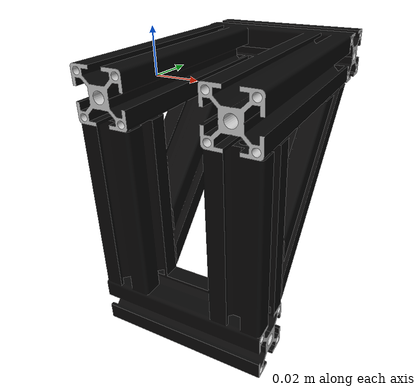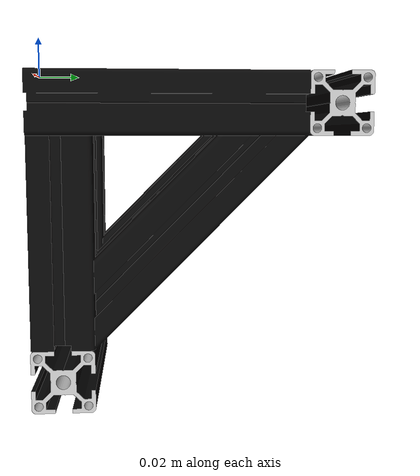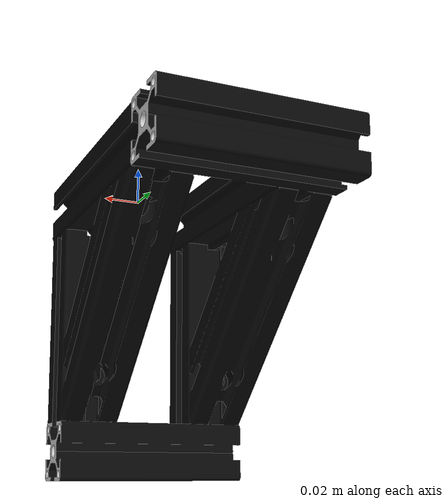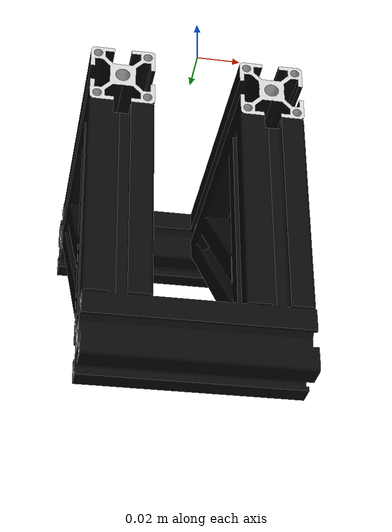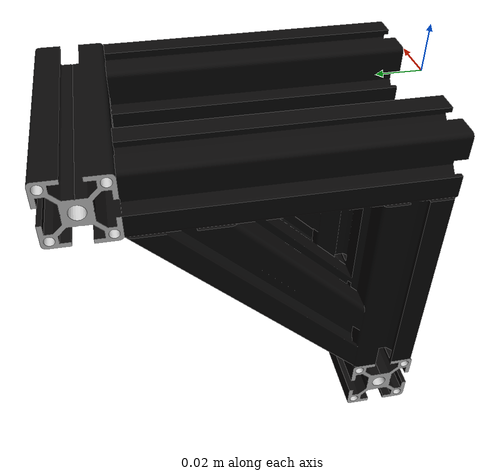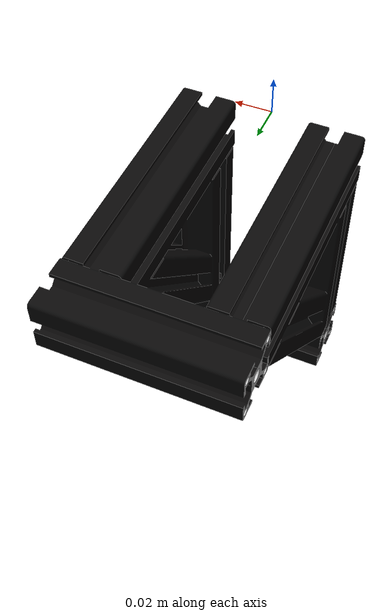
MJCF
<mujoco model="pelvis_0">
  <default>
    <default class="visual">
      <geom group="2" type="mesh" contype="0" conaffinity="0"/>
    </default>
    <default class="collision">
      <geom group="3" type="mesh"/>
    </default>
  </default>
  <asset>
    <material name="matte_iron" specular="1.0" shininess="0.7341073" rgba="0.029342 0.027054 0.027054 1.000000"/>
    <material name="white_aluminum" specular="0.5" shininess="0.25" rgba="0.800000 0.800000 0.800000 1.000000"/>
    <mesh file="pelvis_0/pelvis_0_0.obj"/>
    <mesh file="pelvis_0/pelvis_0_1.obj"/>
  </asset>
  <worldbody>
    <body name="pelvis_0">
      <geom mesh="pelvis_0_0" material="white_aluminum" class="visual"/>
      <geom mesh="pelvis_0_1" material="matte_iron" class="visual"/>
      <geom size="0.015 0.015 0.08" pos=" 0.035 0.015 -0.08" type="box" class="collision"/>
      <geom size="0.015 0.015 0.08" pos="-0.035 0.015 -0.08" type="box" class="collision"/>
      <geom size="0.015 0.08 0.015" pos=" 0.035 0.08 -0.015" type="box" class="collision"/>
      <geom size="0.015 0.08 0.015" pos="-0.035 0.08 -0.015" type="box" class="collision"/>
      <geom size="0.05 0.015 0.015" pos="0.0 0.015 -0.145" type="box" class="collision"/>
      <geom size="0.05 0.015 0.015" pos="0.0 0.145 -0.015" type="box" class="collision"/>
      <geom size="0.015 0.08 0.015" pos=" 0.035 0.06939 -0.06939" quat="0.9238 0.3827 0 0" type="box" class="collision"/>
      <geom size="0.015 0.08 0.015" pos="-0.035 0.06939 -0.06939" quat="0.9238 0.3827 0 0" type="box" class="collision"/>
    </body>
  </worldbody>
</mujoco>
